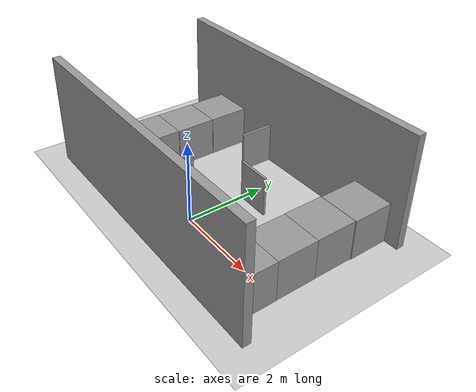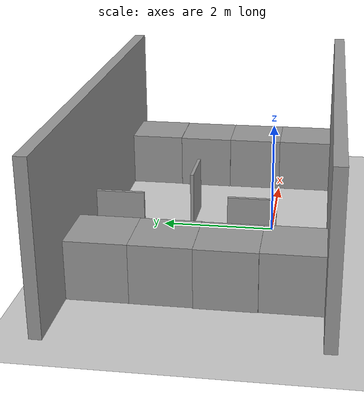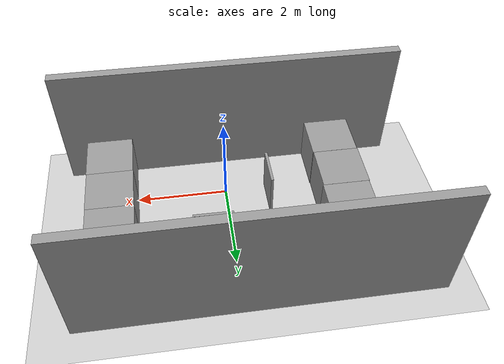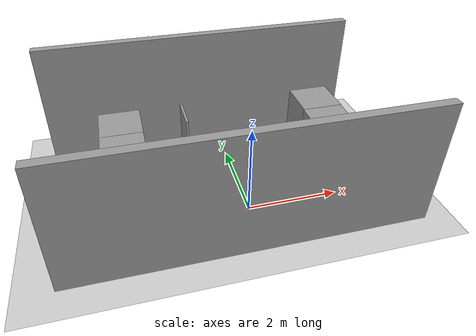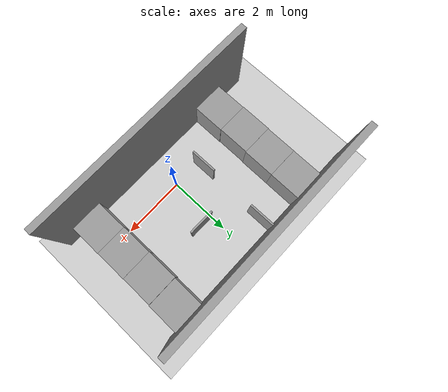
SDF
<sdf version="1.6">
 <world name="default">
  <light name="sun" type="directional">
   <pose>0 0 10 0 -0 0</pose>
   <diffuse>0.8 0.8 0.8 1</diffuse>
   <specular>0.1 0.1 0.1 1</specular>
   <attenuation>
    <range>1000</range>
    <constant>0.9</constant>
    <linear>0.01</linear>
    <quadratic>0.001</quadratic>
   </attenuation>
   <direction>-0.5 0.5 -1</direction>
  </light>
  <model name="ground_plane">
   <static>1</static>
   <link name="link">
    <collision name="collision">
     <geometry><plane><normal>0 0 1</normal><size>100 100</size></plane></geometry>
     <surface><friction><ode><mu>100</mu><mu2>50</mu2></ode></friction></surface>
    </collision>
    <visual name="visual">
     <cast_shadows>0</cast_shadows>
     <geometry><plane><normal>0 0 1</normal><size>100 100</size></plane></geometry>
     <material>
      <script><uri>file://media/materials/scripts/gazebo.material</uri><name>Gazebo/Grey</name></script>
     </material>
    </visual>
   </link>
  </model>
  <gravity>0 0 -9.8</gravity>
  <magnetic_field>6e-06 2.3e-05 -4.2e-05</magnetic_field>
  <atmosphere type="adiabatic"/>
  <physics name="default_physics" default="0" type="ode">
   <max_step_size>0.001</max_step_size>
   <real_time_factor>1</real_time_factor>
   <real_time_update_rate>1000</real_time_update_rate>
  </physics>
  <scene><ambient>0.4 0.4 0.4 1</ambient><background>0.7 0.7 0.7 1</background><shadows>1</shadows></scene>
  <spherical_coordinates>
   <surface_model>EARTH_WGS84</surface_model>
   <latitude_deg>0</latitude_deg>
   <longitude_deg>0</longitude_deg>
   <elevation>0</elevation>
   <heading_deg>0</heading_deg>
  </spherical_coordinates>
  <model name="grey_wall">
   <static>1</static>
   <link name="link">
    <pose>0 0 1.4 0 -0 0</pose>
    <collision name="collision"><geometry><box><size>7.5 0.2 2.8</size></box></geometry></collision>
    <visual name="visual">
     <cast_shadows>0</cast_shadows>
     <geometry><box><size>7.5 0.2 2.8</size></box></geometry>
     <material>
      <script>
       <uri>model://grey_wall/materials/scripts</uri>
       <uri>model://grey_wall/materials/textures</uri>
       <name>vrc/grey_wall</name>
      </script>
     </material>
    </visual>
   </link>
   <pose>-0.399512 3.10468 0 0 -0 0</pose>
  </model>
  <model name="grey_wall_0">
   <static>1</static>
   <link name="link">
    <pose>0 0 1.4 0 -0 0</pose>
    <collision name="collision"><geometry><box><size>7.5 0.2 2.8</size></box></geometry></collision>
    <visual name="visual">
     <cast_shadows>0</cast_shadows>
     <geometry><box><size>7.5 0.2 2.8</size></box></geometry>
     <material>
      <script>
       <uri>model://grey_wall/materials/scripts</uri>
       <uri>model://grey_wall/materials/textures</uri>
       <name>vrc/grey_wall</name>
      </script>
     </material>
    </visual>
   </link>
   <pose>-0.231014 -1.09898 0 0 -0 0</pose>
  </model>
  <model name="unit_box_0">
   <pose>-2.47044 2.50257 0.499995 0 1e-05 -0.001286</pose>
   <link name="link">
    <inertial>
     <mass>1</mass>
     <inertia>
      <ixx>0.166667</ixx>
      <ixy>0</ixy>
      <ixz>0</ixz>
      <iyy>0.166667</iyy>
      <iyz>0</iyz>
      <izz>0.166667</izz>
     </inertia>
    </inertial>
    <collision name="collision"><geometry><box><size>1 1 1</size></box></geometry></collision>
    <visual name="visual">
     <geometry><box><size>1 1 1</size></box></geometry>
     <material>
      <script><name>Gazebo/Grey</name><uri>file://media/materials/scripts/gazebo.material</uri></script>
     </material>
    </visual>
   </link>
  </model>
  <model name="unit_box_1">
   <pose>-2.47456 1.50211 0.499995 1e-05 0 -0.001434</pose>
   <link name="link">
    <inertial>
     <mass>1</mass>
     <inertia>
      <ixx>0.166667</ixx>
      <ixy>0</ixy>
      <ixz>0</ixz>
      <iyy>0.166667</iyy>
      <iyz>0</iyz>
      <izz>0.166667</izz>
     </inertia>
    </inertial>
    <collision name="collision"><geometry><box><size>1 1 1</size></box></geometry></collision>
    <visual name="visual">
     <geometry><box><size>1 1 1</size></box></geometry>
     <material>
      <script><name>Gazebo/Grey</name><uri>file://media/materials/scripts/gazebo.material</uri></script>
     </material>
    </visual>
   </link>
  </model>
  <model name="unit_box_2">
   <pose>-2.49027 0.501732 0.499995 -1e-05 -0 -0.000929</pose>
   <link name="link">
    <inertial>
     <mass>1</mass>
     <inertia>
      <ixx>0.166667</ixx>
      <ixy>0</ixy>
      <ixz>0</ixz>
      <iyy>0.166667</iyy>
      <iyz>0</iyz>
      <izz>0.166667</izz>
     </inertia>
    </inertial>
    <collision name="collision"><geometry><box><size>1 1 1</size></box></geometry></collision>
    <visual name="visual">
     <geometry><box><size>1 1 1</size></box></geometry>
     <material>
      <script><name>Gazebo/Grey</name><uri>file://media/materials/scripts/gazebo.material</uri></script>
     </material>
    </visual>
   </link>
  </model>
  <model name="unit_box_3">
   <pose>-2.48063 -0.498802 0.499995 0 1e-05 2.4e-05</pose>
   <link name="link">
    <inertial>
     <mass>1</mass>
     <inertia>
      <ixx>0.166667</ixx>
      <ixy>0</ixy>
      <ixz>0</ixz>
      <iyy>0.166667</iyy>
      <iyz>0</iyz>
      <izz>0.166667</izz>
     </inertia>
    </inertial>
    <collision name="collision"><geometry><box><size>1 1 1</size></box></geometry></collision>
    <visual name="visual">
     <geometry><box><size>1 1 1</size></box></geometry>
     <material>
      <script><name>Gazebo/Grey</name><uri>file://media/materials/scripts/gazebo.material</uri></script>
     </material>
    </visual>
   </link>
  </model>
  <model name="unit_box_4">
   <pose>2.50791 2.50468 0.499995 0 1e-05 2e-06</pose>
   <link name="link">
    <inertial>
     <mass>1</mass>
     <inertia>
      <ixx>0.166667</ixx>
      <ixy>0</ixy>
      <ixz>0</ixz>
      <iyy>0.166667</iyy>
      <iyz>0</iyz>
      <izz>0.166667</izz>
     </inertia>
    </inertial>
    <collision name="collision"><geometry><box><size>1 1 1</size></box></geometry></collision>
    <visual name="visual">
     <geometry><box><size>1 1 1</size></box></geometry>
     <material>
      <script><name>Gazebo/Grey</name><uri>file://media/materials/scripts/gazebo.material</uri></script>
     </material>
    </visual>
   </link>
  </model>
  <model name="unit_box_5">
   <pose>2.48907 1.50116 0.499995 0 -1e-05 -0.000109</pose>
   <link name="link">
    <inertial>
     <mass>1</mass>
     <inertia>
      <ixx>0.166667</ixx>
      <ixy>0</ixy>
      <ixz>0</ixz>
      <iyy>0.166667</iyy>
      <iyz>0</iyz>
      <izz>0.166667</izz>
     </inertia>
    </inertial>
    <collision name="collision"><geometry><box><size>1 1 1</size></box></geometry></collision>
    <visual name="visual">
     <geometry><box><size>1 1 1</size></box></geometry>
     <material>
      <script><name>Gazebo/Grey</name><uri>file://media/materials/scripts/gazebo.material</uri></script>
     </material>
    </visual>
   </link>
  </model>
  <model name="unit_box_6">
   <pose>2.49575 0.501066 0.499995 1e-05 -0 -7.4e-05</pose>
   <link name="link">
    <inertial>
     <mass>1</mass>
     <inertia>
      <ixx>0.166667</ixx>
      <ixy>0</ixy>
      <ixz>0</ixz>
      <iyy>0.166667</iyy>
      <iyz>0</iyz>
      <izz>0.166667</izz>
     </inertia>
    </inertial>
    <collision name="collision"><geometry><box><size>1 1 1</size></box></geometry></collision>
    <visual name="visual">
     <geometry><box><size>1 1 1</size></box></geometry>
     <material>
      <script><name>Gazebo/Grey</name><uri>file://media/materials/scripts/gazebo.material</uri></script>
     </material>
    </visual>
   </link>
  </model>
  <model name="unit_box_7">
   <pose>2.50389 -0.498945 0.499996 -9e-06 -0 -5e-05</pose>
   <link name="link">
    <inertial>
     <mass>1</mass>
     <inertia>
      <ixx>0.166667</ixx>
      <ixy>0</ixy>
      <ixz>0</ixz>
      <iyy>0.166667</iyy>
      <iyz>0</iyz>
      <izz>0.166667</izz>
     </inertia>
    </inertial>
    <collision name="collision"><geometry><box><size>1 1 1</size></box></geometry></collision>
    <visual name="visual">
     <geometry><box><size>1 1 1</size></box></geometry>
     <material>
      <script><name>Gazebo/Grey</name><uri>file://media/materials/scripts/gazebo.material</uri></script>
     </material>
    </visual>
   </link>
  </model>
  <model name="unit_box_8">
   <pose>-0.913829 2.58534 0.499996 -9e-06 4e-06 0.006023</pose>
   <link name="link">
    <inertial>
     <mass>1</mass>
     <inertia>
      <ixx>0.166667</ixx>
      <ixy>0</ixy>
      <ixz>0</ixz>
      <iyy>0.166667</iyy>
      <iyz>0</iyz>
      <izz>0.166667</izz>
     </inertia>
    </inertial>
    <collision name="collision"><geometry><box><size>0.0590806 0.838013 1</size></box></geometry></collision>
    <visual name="visual">
     <geometry><box><size>0.0590806 0.838013 1</size></box></geometry>
     <material>
      <script><name>Gazebo/Grey</name><uri>file://media/materials/scripts/gazebo.material</uri></script>
     </material>
    </visual>
   </link>
  </model>
  <model name="unit_box_8_clone">
   <pose>0.402654 1.47161 0.499996 -7e-06 -2e-06 -1.5832</pose>
   <link name="link">
    <inertial>
     <mass>1</mass>
     <inertia>
      <ixx>0.166667</ixx>
      <ixy>0</ixy>
      <ixz>0</ixz>
      <iyy>0.166667</iyy>
      <iyz>0</iyz>
      <izz>0.166667</izz>
     </inertia>
    </inertial>
    <collision name="collision"><geometry><box><size>0.05908 0.838013 1</size></box></geometry></collision>
    <visual name="visual">
     <geometry><box><size>0.05908 0.838013 1</size></box></geometry>
     <material>
      <script><name>Gazebo/Grey</name><uri>file://media/materials/scripts/gazebo.material</uri></script>
     </material>
    </visual>
   </link>
  </model>
  <model name="unit_box_8_clone_0">
   <pose>-0.939472 0.292408 0.499995 -7e-06 2e-06 0.005897</pose>
   <link name="link">
    <inertial>
     <mass>1</mass>
     <inertia>
      <ixx>0.166667</ixx>
      <ixy>0</ixy>
      <ixz>0</ixz>
      <iyy>0.166667</iyy>
      <iyz>0</iyz>
      <izz>0.166667</izz>
     </inertia>
    </inertial>
    <collision name="collision"><geometry><box><size>0.05908 0.838013 1</size></box></geometry></collision>
    <visual name="visual">
     <geometry><box><size>0.05908 0.838013 1</size></box></geometry>
     <material>
      <script><name>Gazebo/Grey</name><uri>file://media/materials/scripts/gazebo.material</uri></script>
     </material>
    </visual>
   </link>
  </model>
 </world>
</sdf>
